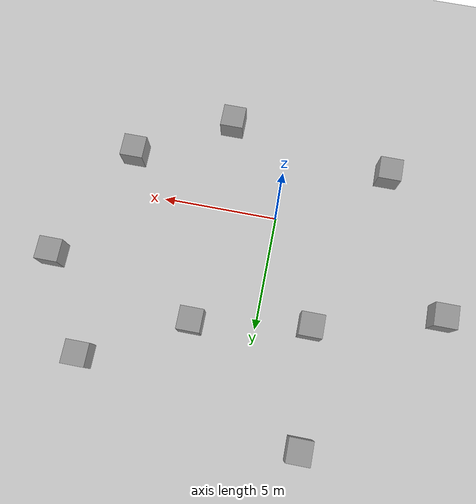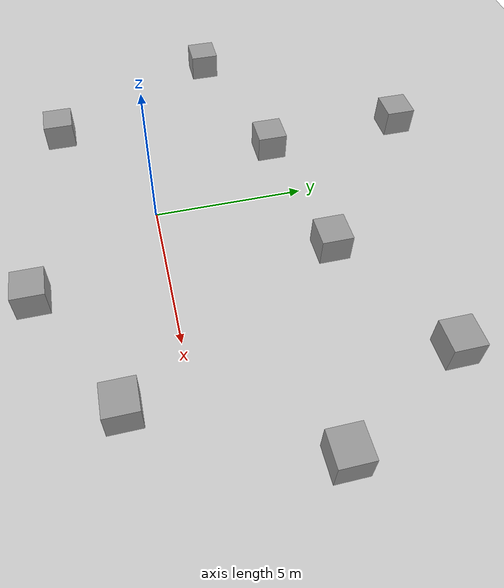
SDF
<sdf version="1.6">
 <world name="default">
  <light name="sun" type="directional">
   <pose>0 0 10 0 -0 0</pose>
   <diffuse>0.8 0.8 0.8 1</diffuse>
   <specular>0.1 0.1 0.1 1</specular>
   <attenuation>
    <range>1000</range>
    <constant>0.9</constant>
    <linear>0.01</linear>
    <quadratic>0.001</quadratic>
   </attenuation>
   <direction>-0.5 0.5 -1</direction>
  </light>
  <model name="ground_plane">
   <static>1</static>
   <link name="link">
    <collision name="collision">
     <geometry><plane><normal>0 0 1</normal><size>100 100</size></plane></geometry>
     <surface><friction><ode><mu>100</mu><mu2>50</mu2></ode></friction></surface>
    </collision>
    <visual name="visual">
     <cast_shadows>0</cast_shadows>
     <geometry><plane><normal>0 0 1</normal><size>100 100</size></plane></geometry>
     <material>
      <script><uri>file://media/materials/scripts/gazebo.material</uri><name>Gazebo/Grey</name></script>
     </material>
    </visual>
   </link>
  </model>
  <gravity>0 0 -9.8</gravity>
  <magnetic_field>6e-06 2.3e-05 -4.2e-05</magnetic_field>
  <atmosphere type="adiabatic"/>
  <physics name="default_physics" default="0" type="ode">
   <max_step_size>0.001</max_step_size>
   <real_time_factor>1</real_time_factor>
   <real_time_update_rate>1000</real_time_update_rate>
  </physics>
  <scene><ambient>0.4 0.4 0.4 1</ambient><background>0.7 0.7 0.7 1</background><shadows>1</shadows></scene>
  <spherical_coordinates>
   <surface_model>EARTH_WGS84</surface_model>
   <latitude_deg>0</latitude_deg>
   <longitude_deg>0</longitude_deg>
   <elevation>0</elevation>
   <heading_deg>0</heading_deg>
  </spherical_coordinates>
  <model name="unit_box_0">
   <pose>-2.27489 4.50586 0.499995 1e-05 -0 0</pose>
   <link name="link">
    <inertial>
     <mass>1</mass>
     <inertia>
      <ixx>0.166667</ixx>
      <ixy>0</ixy>
      <ixz>0</ixz>
      <iyy>0.166667</iyy>
      <iyz>0</iyz>
      <izz>0.166667</izz>
     </inertia>
    </inertial>
    <collision name="collision"><geometry><box><size>1 1 1</size></box></geometry></collision>
    <visual name="visual">
     <geometry><box><size>1 1 1</size></box></geometry>
     <material>
      <script><name>Gazebo/Grey</name><uri>file://media/materials/scripts/gazebo.material</uri></script>
     </material>
    </visual>
   </link>
  </model>
  <model name="unit_box_1">
   <pose>2.67416 5.20401 0.499995 0 -1e-05 0</pose>
   <link name="link">
    <inertial>
     <mass>1</mass>
     <inertia>
      <ixx>0.166667</ixx>
      <ixy>0</ixy>
      <ixz>0</ixz>
      <iyy>0.166667</iyy>
      <iyz>0</iyz>
      <izz>0.166667</izz>
     </inertia>
    </inertial>
    <collision name="collision"><geometry><box><size>1 1 1</size></box></geometry></collision>
    <visual name="visual">
     <geometry><box><size>1 1 1</size></box></geometry>
     <material>
      <script><name>Gazebo/Grey</name><uri>file://media/materials/scripts/gazebo.material</uri></script>
     </material>
    </visual>
   </link>
  </model>
  <model name="unit_box_2">
   <pose>-2.59686 9.48678 0.499995 1e-05 -0 0</pose>
   <link name="link">
    <inertial>
     <mass>1</mass>
     <inertia>
      <ixx>0.166667</ixx>
      <ixy>0</ixy>
      <ixz>0</ixz>
      <iyy>0.166667</iyy>
      <iyz>0</iyz>
      <izz>0.166667</izz>
     </inertia>
    </inertial>
    <collision name="collision"><geometry><box><size>1 1 1</size></box></geometry></collision>
    <visual name="visual">
     <geometry><box><size>1 1 1</size></box></geometry>
     <material>
      <script><name>Gazebo/Grey</name><uri>file://media/materials/scripts/gazebo.material</uri></script>
     </material>
    </visual>
   </link>
  </model>
  <model name="unit_box_4">
   <pose>-7.62875 3.10572 0.499995 1e-05 -0 0</pose>
   <link name="link">
    <inertial>
     <mass>1</mass>
     <inertia>
      <ixx>0.166667</ixx>
      <ixy>0</ixy>
      <ixz>0</ixz>
      <iyy>0.166667</iyy>
      <iyz>0</iyz>
      <izz>0.166667</izz>
     </inertia>
    </inertial>
    <collision name="collision"><geometry><box><size>1 1 1</size></box></geometry></collision>
    <visual name="visual">
     <geometry><box><size>1 1 1</size></box></geometry>
     <material>
      <script><name>Gazebo/Grey</name><uri>file://media/materials/scripts/gazebo.material</uri></script>
     </material>
    </visual>
   </link>
  </model>
  <model name="unit_box_5">
   <pose>9.15161 3.40694 0.499995 0 -1e-05 0</pose>
   <link name="link">
    <inertial>
     <mass>1</mass>
     <inertia>
      <ixx>0.166667</ixx>
      <ixy>0</ixy>
      <ixz>0</ixz>
      <iyy>0.166667</iyy>
      <iyz>0</iyz>
      <izz>0.166667</izz>
     </inertia>
    </inertial>
    <collision name="collision"><geometry><box><size>1 1 1</size></box></geometry></collision>
    <visual name="visual">
     <geometry><box><size>1 1 1</size></box></geometry>
     <material>
      <script><name>Gazebo/Grey</name><uri>file://media/materials/scripts/gazebo.material</uri></script>
     </material>
    </visual>
   </link>
  </model>
  <model name="unit_box_6">
   <pose>-4.56047 -2.88058 0.499995 1e-05 -0 0</pose>
   <link name="link">
    <inertial>
     <mass>1</mass>
     <inertia>
      <ixx>0.166667</ixx>
      <ixy>0</ixy>
      <ixz>0</ixz>
      <iyy>0.166667</iyy>
      <iyz>0</iyz>
      <izz>0.166667</izz>
     </inertia>
    </inertial>
    <collision name="collision"><geometry><box><size>1 1 1</size></box></geometry></collision>
    <visual name="visual">
     <geometry><box><size>1 1 1</size></box></geometry>
     <material>
      <script><name>Gazebo/Grey</name><uri>file://media/materials/scripts/gazebo.material</uri></script>
     </material>
    </visual>
   </link>
  </model>
  <model name="unit_box_7">
   <pose>2.66613 -4.05301 0.499995 0 -1e-05 0</pose>
   <link name="link">
    <inertial>
     <mass>1</mass>
     <inertia>
      <ixx>0.166667</ixx>
      <ixy>0</ixy>
      <ixz>0</ixz>
      <iyy>0.166667</iyy>
      <iyz>0</iyz>
      <izz>0.166667</izz>
     </inertia>
    </inertial>
    <collision name="collision"><geometry><box><size>1 1 1</size></box></geometry></collision>
    <visual name="visual">
     <geometry><box><size>1 1 1</size></box></geometry>
     <material>
      <script><name>Gazebo/Grey</name><uri>file://media/materials/scripts/gazebo.material</uri></script>
     </material>
    </visual>
   </link>
  </model>
  <model name="unit_box_8">
   <pose>6.72236 -1.83841 0.499995 1e-05 -0 0</pose>
   <link name="link">
    <inertial>
     <mass>1</mass>
     <inertia>
      <ixx>0.166667</ixx>
      <ixy>0</ixy>
      <ixz>0</ixz>
      <iyy>0.166667</iyy>
      <iyz>0</iyz>
      <izz>0.166667</izz>
     </inertia>
    </inertial>
    <collision name="collision"><geometry><box><size>1 1 1</size></box></geometry></collision>
    <visual name="visual">
     <geometry><box><size>1 1 1</size></box></geometry>
     <material>
      <script><name>Gazebo/Grey</name><uri>file://media/materials/scripts/gazebo.material</uri></script>
     </material>
    </visual>
   </link>
  </model>
  <model name="unit_box_3_0">
   <pose>6.94169 7.42032 0.5 0 -0 0</pose>
   <link name="link">
    <inertial>
     <mass>1</mass>
     <inertia>
      <ixx>0.166667</ixx>
      <ixy>0</ixy>
      <ixz>0</ixz>
      <iyy>0.166667</iyy>
      <iyz>0</iyz>
      <izz>0.166667</izz>
     </inertia>
    </inertial>
    <collision name="collision"><geometry><box><size>1 1 1</size></box></geometry></collision>
    <visual name="visual">
     <geometry><box><size>1 1 1</size></box></geometry>
     <material>
      <script><name>Gazebo/Grey</name><uri>file://media/materials/scripts/gazebo.material</uri></script>
     </material>
    </visual>
   </link>
  </model>
 </world>
</sdf>
